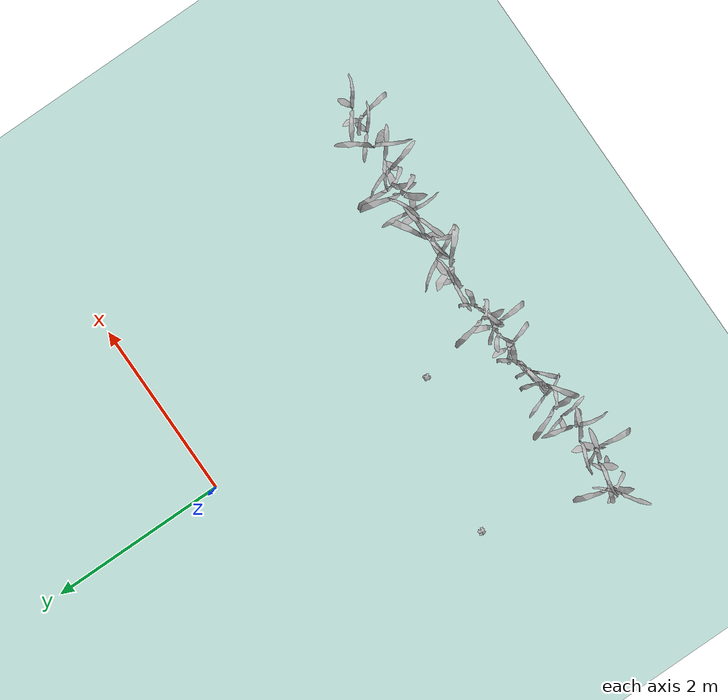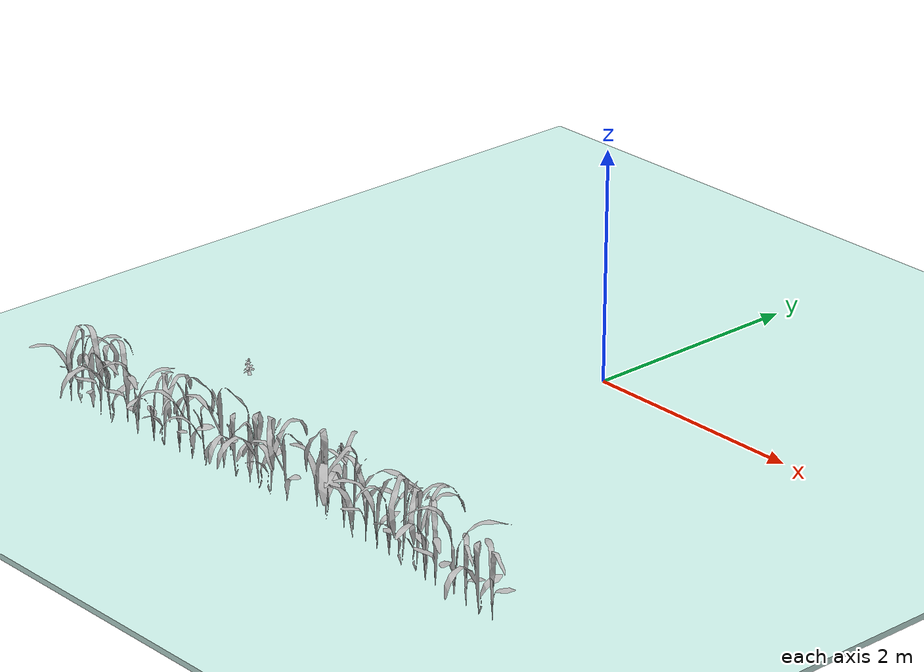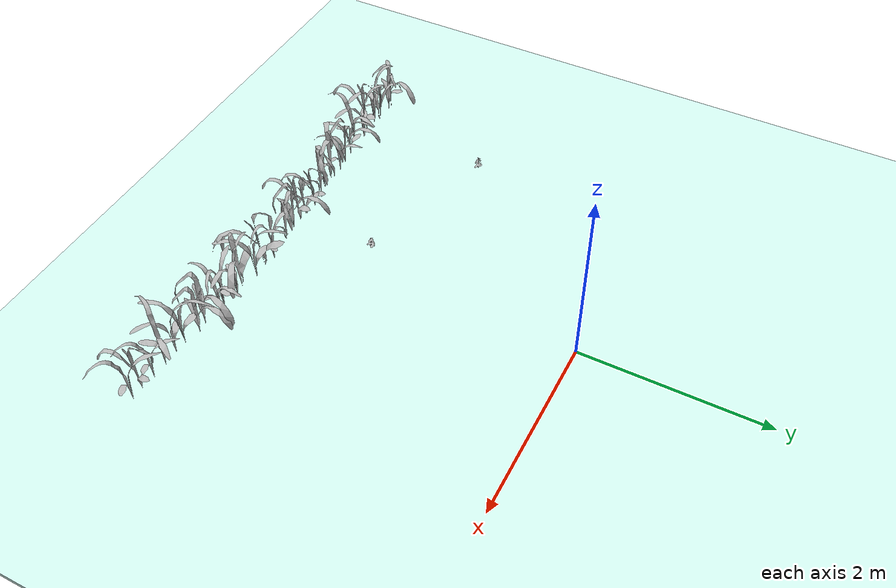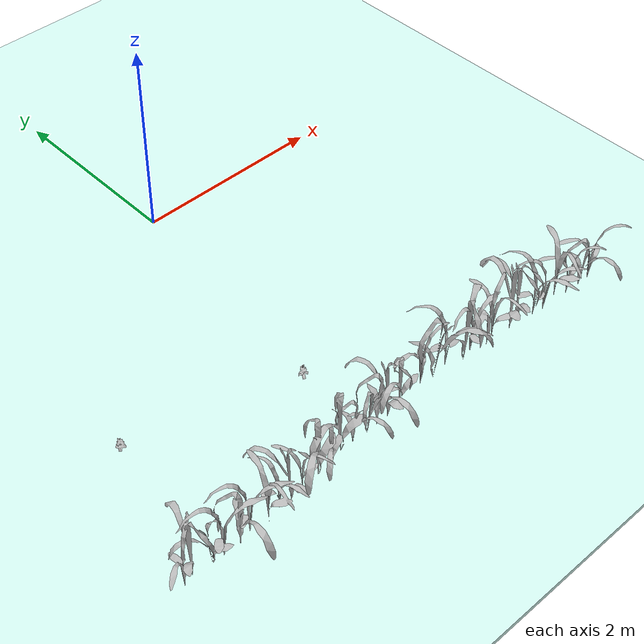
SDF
<sdf version="1.9">
 <world name="feild">
  <model name="ground">
   <static>true</static>
   <pose>0.00 3.25 -0.025 0 0 0</pose>
   <link name="link">
    <collision name="collision">
     <geometry><box><size>9.00 17.30 0.05</size></box></geometry>
     <surface><friction><ode><mu>1.0</mu><mu2>1.0</mu2></ode></friction></surface>
    </collision>
    <visual name="visual">
     <geometry><box><size>9.00 17.30 0.05</size></box></geometry>
     <material>
      <diffuse>0.81 0.95 0.92 1</diffuse>
      <pbr>
       <metal>
        <albedo_map>model://materials/textures/grass_color.jpg</albedo_map>
        <normal_map>model://materials/textures/grass_normal.jpg</normal_map>
       </metal>
      </pbr>
     </material>
    </visual>
   </link>
  </model>
  <model name="row_01">
   <static>true</static>
   <pose>0 -3.400 0 0 0 0</pose>
   <link name="link">
    <visual name="p000">
     <pose>-2.470 -0.082 0.046 0 0 5.97</pose>
     <geometry>
      <mesh><uri>model://maize_02/meshes/maize_02.dae</uri><scale>0.6337 0.6337 0.6337</scale></mesh>
     </geometry>
    </visual>
    <collision name="p000_c">
     <pose>-2.470 -0.082 0.232 0 0 0</pose>
     <geometry><box><size>0.019 0.019 0.371</size></box></geometry>
    </collision>
    <visual name="p001">
     <pose>-2.368 -0.057 0.054 0 0 2.07</pose>
     <geometry>
      <mesh><uri>model://maize_01/meshes/maize_01.dae</uri><scale>0.7327 0.7327 0.7327</scale></mesh>
     </geometry>
    </visual>
    <collision name="p001_c">
     <pose>-2.368 -0.057 0.268 0 0 0</pose>
     <geometry><box><size>0.021 0.021 0.429</size></box></geometry>
    </collision>
    <visual name="p002">
     <pose>-2.182 -0.072 0.042 0 0 3.60</pose>
     <geometry>
      <mesh><uri>model://maize_01/meshes/maize_01.dae</uri><scale>0.5688 0.5688 0.5688</scale></mesh>
     </geometry>
    </visual>
    <collision name="p002_c">
     <pose>-2.182 -0.072 0.208 0 0 0</pose>
     <geometry><box><size>0.017 0.017 0.333</size></box></geometry>
    </collision>
    <visual name="p003">
     <pose>-2.075 -0.088 0.055 0 0 1.92</pose>
     <geometry>
      <mesh><uri>model://maize_02/meshes/maize_02.dae</uri><scale>0.7554 0.7554 0.7554</scale></mesh>
     </geometry>
    </visual>
    <collision name="p003_c">
     <pose>-2.075 -0.088 0.276 0 0 0</pose>
     <geometry><box><size>0.022 0.022 0.442</size></box></geometry>
    </collision>
    <visual name="p004">
     <pose>-1.923 -0.102 0.054 0 0 5.40</pose>
     <geometry>
      <mesh><uri>model://maize_01/meshes/maize_01.dae</uri><scale>0.7394 0.7394 0.7394</scale></mesh>
     </geometry>
    </visual>
    <collision name="p004_c">
     <pose>-1.923 -0.102 0.271 0 0 0</pose>
     <geometry><box><size>0.022 0.022 0.433</size></box></geometry>
    </collision>
    <visual name="p005">
     <pose>-1.777 -0.053 0.052 0 0 1.76</pose>
     <geometry>
      <mesh><uri>model://maize_02/meshes/maize_02.dae</uri><scale>0.7153 0.7153 0.7153</scale></mesh>
     </geometry>
    </visual>
    <collision name="p005_c">
     <pose>-1.777 -0.053 0.262 0 0 0</pose>
     <geometry><box><size>0.021 0.021 0.419</size></box></geometry>
    </collision>
    <visual name="p006">
     <pose>-1.603 -0.086 0.053 0 0 3.49</pose>
     <geometry>
      <mesh><uri>model://maize_02/meshes/maize_02.dae</uri><scale>0.7211 0.7211 0.7211</scale></mesh>
     </geometry>
    </visual>
    <collision name="p006_c">
     <pose>-1.603 -0.086 0.264 0 0 0</pose>
     <geometry><box><size>0.021 0.021 0.422</size></box></geometry>
    </collision>
    <visual name="p007">
     <pose>-1.456 -0.044 0.042 0 0 0.79</pose>
     <geometry>
      <mesh><uri>model://maize_02/meshes/maize_02.dae</uri><scale>0.5796 0.5796 0.5796</scale></mesh>
     </geometry>
    </visual>
    <collision name="p007_c">
     <pose>-1.456 -0.044 0.212 0 0 0</pose>
     <geometry><box><size>0.017 0.017 0.339</size></box></geometry>
    </collision>
    <visual name="p008">
     <pose>-1.323 -0.041 0.050 0 0 2.74</pose>
     <geometry>
      <mesh><uri>model://maize_01/meshes/maize_01.dae</uri><scale>0.6885 0.6885 0.6885</scale></mesh>
     </geometry>
    </visual>
    <collision name="p008_c">
     <pose>-1.323 -0.041 0.252 0 0 0</pose>
     <geometry><box><size>0.020 0.020 0.403</size></box></geometry>
    </collision>
    <visual name="p009">
     <pose>-1.173 -0.012 0.040 0 0 4.09</pose>
     <geometry>
      <mesh><uri>model://maize_02/meshes/maize_02.dae</uri><scale>0.5471 0.5471 0.5471</scale></mesh>
     </geometry>
    </visual>
    <collision name="p009_c">
     <pose>-1.173 -0.012 0.200 0 0 0</pose>
     <geometry><box><size>0.016 0.016 0.320</size></box></geometry>
    </collision>
    <visual name="p010">
     <pose>-1.006 -0.023 0.055 0 0 4.56</pose>
     <geometry>
      <mesh><uri>model://maize_01/meshes/maize_01.dae</uri><scale>0.7533 0.7533 0.7533</scale></mesh>
     </geometry>
    </visual>
    <collision name="p010_c">
     <pose>-1.006 -0.023 0.276 0 0 0</pose>
     <geometry><box><size>0.022 0.022 0.441</size></box></geometry>
    </collision>
    <visual name="p011">
     <pose>-0.853 -0.015 0.041 0 0 4.69</pose>
     <geometry>
      <mesh><uri>model://maize_01/meshes/maize_01.dae</uri><scale>0.5665 0.5665 0.5665</scale></mesh>
     </geometry>
    </visual>
    <collision name="p011_c">
     <pose>-0.853 -0.015 0.207 0 0 0</pose>
     <geometry><box><size>0.017 0.017 0.332</size></box></geometry>
    </collision>
    <visual name="p012">
     <pose>-0.691 0.038 0.056 0 0 4.17</pose>
     <geometry>
      <mesh><uri>model://maize_01/meshes/maize_01.dae</uri><scale>0.7600 0.7600 0.7600</scale></mesh>
     </geometry>
    </visual>
    <collision name="p012_c">
     <pose>-0.691 0.038 0.278 0 0 0</pose>
     <geometry><box><size>0.022 0.022 0.445</size></box></geometry>
    </collision>
    <visual name="p013">
     <pose>-0.549 0.036 0.043 0 0 5.82</pose>
     <geometry>
      <mesh><uri>model://maize_01/meshes/maize_01.dae</uri><scale>0.5893 0.5893 0.5893</scale></mesh>
     </geometry>
    </visual>
    <collision name="p013_c">
     <pose>-0.549 0.036 0.216 0 0 0</pose>
     <geometry><box><size>0.017 0.017 0.345</size></box></geometry>
    </collision>
    <visual name="p014">
     <pose>-0.378 0.034 0.042 0 0 0.62</pose>
     <geometry>
      <mesh><uri>model://maize_01/meshes/maize_01.dae</uri><scale>0.5764 0.5764 0.5764</scale></mesh>
     </geometry>
    </visual>
    <collision name="p014_c">
     <pose>-0.378 0.034 0.211 0 0 0</pose>
     <geometry><box><size>0.017 0.017 0.337</size></box></geometry>
    </collision>
    <visual name="p015">
     <pose>-0.266 0.036 0.051 0 0 5.57</pose>
     <geometry>
      <mesh><uri>model://maize_01/meshes/maize_01.dae</uri><scale>0.6982 0.6982 0.6982</scale></mesh>
     </geometry>
    </visual>
    <collision name="p015_c">
     <pose>-0.266 0.036 0.256 0 0 0</pose>
     <geometry><box><size>0.020 0.020 0.409</size></box></geometry>
    </collision>
    <visual name="p016">
     <pose>-0.130 0.039 0.053 0 0 2.55</pose>
     <geometry>
      <mesh><uri>model://maize_01/meshes/maize_01.dae</uri><scale>0.7198 0.7198 0.7198</scale></mesh>
     </geometry>
    </visual>
    <collision name="p016_c">
     <pose>-0.130 0.039 0.263 0 0 0</pose>
     <geometry><box><size>0.021 0.021 0.421</size></box></geometry>
    </collision>
    <visual name="p017">
     <pose>0.038 0.058 0.046 0 0 4.25</pose>
     <geometry>
      <mesh><uri>model://maize_01/meshes/maize_01.dae</uri><scale>0.6280 0.6280 0.6280</scale></mesh>
     </geometry>
    </visual>
    <collision name="p017_c">
     <pose>0.038 0.058 0.230 0 0 0</pose>
     <geometry><box><size>0.018 0.018 0.368</size></box></geometry>
    </collision>
    <visual name="p019">
     <pose>0.342 0.102 0.048 0 0 5.26</pose>
     <geometry>
      <mesh><uri>model://maize_02/meshes/maize_02.dae</uri><scale>0.6547 0.6547 0.6547</scale></mesh>
     </geometry>
    </visual>
    <collision name="p019_c">
     <pose>0.342 0.102 0.240 0 0 0</pose>
     <geometry><box><size>0.019 0.019 0.383</size></box></geometry>
    </collision>
    <visual name="p020">
     <pose>0.474 0.071 0.059 0 0 0.06</pose>
     <geometry>
      <mesh><uri>model://maize_01/meshes/maize_01.dae</uri><scale>0.8100 0.8100 0.8100</scale></mesh>
     </geometry>
    </visual>
    <collision name="p020_c">
     <pose>0.474 0.071 0.296 0 0 0</pose>
     <geometry><box><size>0.024 0.024 0.474</size></box></geometry>
    </collision>
    <visual name="p021">
     <pose>0.653 0.097 0.054 0 0 1.12</pose>
     <geometry>
      <mesh><uri>model://maize_02/meshes/maize_02.dae</uri><scale>0.7419 0.7419 0.7419</scale></mesh>
     </geometry>
    </visual>
    <collision name="p021_c">
     <pose>0.653 0.097 0.271 0 0 0</pose>
     <geometry><box><size>0.022 0.022 0.434</size></box></geometry>
    </collision>
    <visual name="p022">
     <pose>0.828 0.031 0.060 0 0 1.33</pose>
     <geometry>
      <mesh><uri>model://maize_01/meshes/maize_01.dae</uri><scale>0.8156 0.8156 0.8156</scale></mesh>
     </geometry>
    </visual>
    <collision name="p022_c">
     <pose>0.828 0.031 0.298 0 0 0</pose>
     <geometry><box><size>0.024 0.024 0.478</size></box></geometry>
    </collision>
    <visual name="p023">
     <pose>0.944 0.060 0.052 0 0 2.26</pose>
     <geometry>
      <mesh><uri>model://maize_02/meshes/maize_02.dae</uri><scale>0.7056 0.7056 0.7056</scale></mesh>
     </geometry>
    </visual>
    <collision name="p023_c">
     <pose>0.944 0.060 0.258 0 0 0</pose>
     <geometry><box><size>0.021 0.021 0.413</size></box></geometry>
    </collision>
    <visual name="p024">
     <pose>1.119 0.019 0.052 0 0 5.65</pose>
     <geometry>
      <mesh><uri>model://maize_02/meshes/maize_02.dae</uri><scale>0.7167 0.7167 0.7167</scale></mesh>
     </geometry>
    </visual>
    <collision name="p024_c">
     <pose>1.119 0.019 0.262 0 0 0</pose>
     <geometry><box><size>0.021 0.021 0.420</size></box></geometry>
    </collision>
    <visual name="p025">
     <pose>1.220 0.049 0.049 0 0 3.66</pose>
     <geometry>
      <mesh><uri>model://maize_02/meshes/maize_02.dae</uri><scale>0.6719 0.6719 0.6719</scale></mesh>
     </geometry>
    </visual>
    <collision name="p025_c">
     <pose>1.220 0.049 0.246 0 0 0</pose>
     <geometry><box><size>0.020 0.020 0.393</size></box></geometry>
    </collision>
    <visual name="p026">
     <pose>1.416 0.002 0.060 0 0 2.12</pose>
     <geometry>
      <mesh><uri>model://maize_01/meshes/maize_01.dae</uri><scale>0.8171 0.8171 0.8171</scale></mesh>
     </geometry>
    </visual>
    <collision name="p026_c">
     <pose>1.416 0.002 0.299 0 0 0</pose>
     <geometry><box><size>0.024 0.024 0.478</size></box></geometry>
    </collision>
    <visual name="p027">
     <pose>1.541 0.031 0.055 0 0 2.31</pose>
     <geometry>
      <mesh><uri>model://maize_01/meshes/maize_01.dae</uri><scale>0.7511 0.7511 0.7511</scale></mesh>
     </geometry>
    </visual>
    <collision name="p027_c">
     <pose>1.541 0.031 0.275 0 0 0</pose>
     <geometry><box><size>0.022 0.022 0.440</size></box></geometry>
    </collision>
    <visual name="p028">
     <pose>1.703 -0.026 0.055 0 0 0.88</pose>
     <geometry>
      <mesh><uri>model://maize_02/meshes/maize_02.dae</uri><scale>0.7456 0.7456 0.7456</scale></mesh>
     </geometry>
    </visual>
    <collision name="p028_c">
     <pose>1.703 -0.026 0.273 0 0 0</pose>
     <geometry><box><size>0.022 0.022 0.437</size></box></geometry>
    </collision>
    <visual name="p029">
     <pose>1.829 -0.042 0.051 0 0 1.55</pose>
     <geometry>
      <mesh><uri>model://maize_02/meshes/maize_02.dae</uri><scale>0.6904 0.6904 0.6904</scale></mesh>
     </geometry>
    </visual>
    <collision name="p029_c">
     <pose>1.829 -0.042 0.253 0 0 0</pose>
     <geometry><box><size>0.020 0.020 0.404</size></box></geometry>
    </collision>
    <visual name="p030">
     <pose>2.011 -0.021 0.058 0 0 3.18</pose>
     <geometry>
      <mesh><uri>model://maize_02/meshes/maize_02.dae</uri><scale>0.7949 0.7949 0.7949</scale></mesh>
     </geometry>
    </visual>
    <collision name="p030_c">
     <pose>2.011 -0.021 0.291 0 0 0</pose>
     <geometry><box><size>0.023 0.023 0.465</size></box></geometry>
    </collision>
    <visual name="p031">
     <pose>2.166 -0.044 0.045 0 0 4.64</pose>
     <geometry>
      <mesh><uri>model://maize_02/meshes/maize_02.dae</uri><scale>0.6199 0.6199 0.6199</scale></mesh>
     </geometry>
    </visual>
    <collision name="p031_c">
     <pose>2.166 -0.044 0.227 0 0 0</pose>
     <geometry><box><size>0.018 0.018 0.363</size></box></geometry>
    </collision>
    <visual name="p032">
     <pose>2.321 -0.064 0.047 0 0 5.68</pose>
     <geometry>
      <mesh><uri>model://maize_01/meshes/maize_01.dae</uri><scale>0.6431 0.6431 0.6431</scale></mesh>
     </geometry>
    </visual>
    <collision name="p032_c">
     <pose>2.321 -0.064 0.235 0 0 0</pose>
     <geometry><box><size>0.019 0.019 0.377</size></box></geometry>
    </collision>
    <visual name="p033">
     <pose>2.462 -0.058 0.051 0 0 4.73</pose>
     <geometry>
      <mesh><uri>model://maize_02/meshes/maize_02.dae</uri><scale>0.6938 0.6938 0.6938</scale></mesh>
     </geometry>
    </visual>
    <collision name="p033_c">
     <pose>2.462 -0.058 0.254 0 0 0</pose>
     <geometry><box><size>0.020 0.020 0.406</size></box></geometry>
    </collision>
   </link>
  </model>
  <include>
   <uri>model://nettle</uri>
   <name>weed_00</name>
   <pose>-0.314 -2.505 0 0 0 4.25</pose>
   <static>true</static>
  </include>
  <include>
   <uri>model://nettle</uri>
   <name>weed_03</name>
   <pose>-1.991 -2.057 0 0 0 5.84</pose>
   <static>true</static>
  </include>
 </world>
</sdf>
